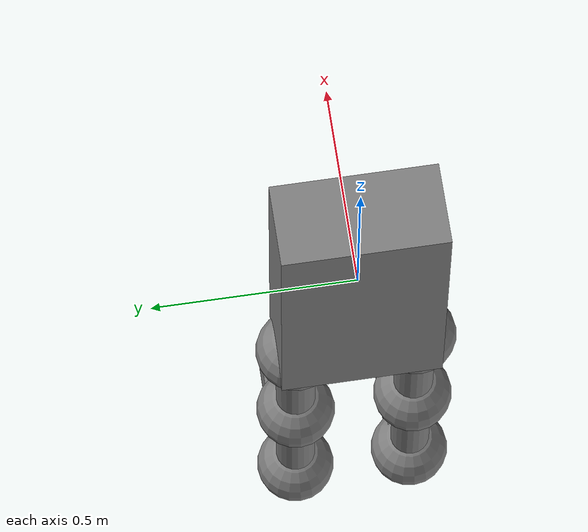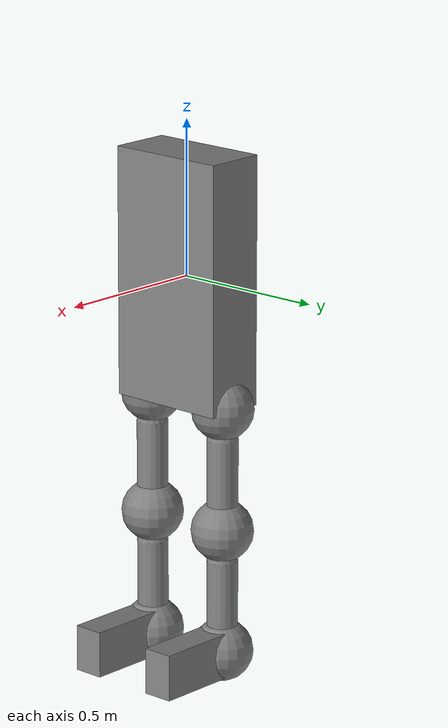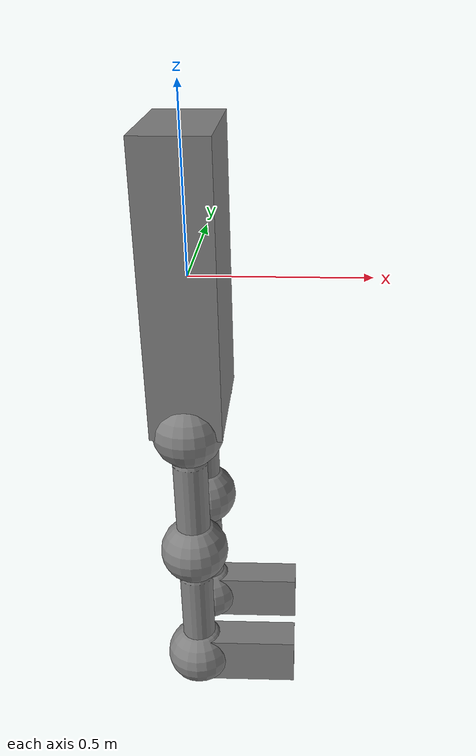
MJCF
<mujoco model="legs">
    <compiler angle="degree" coordinate="global" />
    <default>
        <joint stiffness="5" damping="5"/>
    </default>
    <worldbody>
        <body name="base">
            <joint armature="0" axis="1 0 0" damping="0" limited="false" name="ignorex" pos="0 0 0" stiffness="0" type="slide"/>
            <joint armature="0" axis="0 0 1" damping="0" limited="false" name="ignorez" pos="0 0 0" stiffness="0" type="slide"/>
            <joint armature="0" axis="0 1 0" damping="0" limited="false" name="ignorey" pos="0 0 0" stiffness="0" type="hinge"/>
            <geom name="base" size="0.1 0.2 0.4" type="box" mass="15"/>

            <!-- Beginning of right leg -->
            <body name="right_hip">
                <geom name="right_hip_geom" size="0.1" type="sphere" pos="0 -0.15 -0.4" mass="0.5"/>
                <body name="right_thigh">
                    <joint axis="0 1 0" name="right_hip_to_right_thigh" pos="0 -0.15 -0.4" limited="true" range="-90 90" type="hinge"/>
                    <geom name="right_thigh_geom" fromto="0 -0.15 -0.5 0 -0.15 -0.8" size="0.05" type="capsule" mass="7"/>

                    <body name="right_knee">
                        <geom name="right_knee_geom" size="0.1" type="sphere" pos="0 -0.15 -0.8" mass="0.5"/>

                        <body name="right_shin">
                            <joint axis="0 1 0" name="right_knee_to_right_shin" pos="0 0 -0.8" limited="true" range="0 90" type="hinge"/>
                            <geom name="right_shin_geom" fromto="0 -0.15 -0.9 0 -0.15 -1.2" size="0.05" type="capsule" mass="5"/>

                            <body name="right_ankle">
                                <geom name="right_ankle_geom" size="0.1" type="sphere" pos="0 -0.15 -1.2" mass="0.5"/>

                                <body name="right_foot">
                                    <joint axis="0 1 0" name="right_ankle_to_right_foot" pos="0 0 -1.2" limited="true" range="-15 90" type="hinge"/>
                                    <geom name="right_foot_geom" pos="0.15 -0.15 -1.2" size="0.15 0.05 0.075" type="box" mass="1"/>
                                </body>
                            </body>
                        </body>
                    </body>
                </body>
            </body>
            <!-- Beginning of left leg -->
            <body name="left_hip">
                <geom name="left_hip_geom" size="0.1" type="sphere" pos="0 0.15 -0.4" mass="0.5"/>
                <body name="left_thigh">
                    <joint axis="0 1 0" name="left_hip_to_left_thigh" pos="0 0.15 -0.4" limited="true" range="-90 90" type="hinge"/>
                    <geom name="left_thigh_geom" fromto="0 0.15 -0.5 0 0.15 -0.8" size="0.05" type="capsule" mass="7"/>

                    <body name="left_knee">
                        <geom name="left_knee_geom" size="0.1" type="sphere" pos="0 0.15 -0.8" mass="0.5"/>

                        <body name="left_shin">
                            <joint axis="0 1 0" name="left_thigh_to_left_shin" pos="0 0 -0.8" limited="true" range="0 90" type="hinge"/>
                            <geom name="left_shin_geom" fromto="0 0.15 -0.9 0 0.15 -1.2" size="0.05" type="capsule" mass="5"/>

                            <body name="left_ankle">
                                <geom name="left_ankle_geom" size="0.1" type="sphere" pos="0 0.15 -1.2" mass="0.5"/>

                                <body name="left_foot">
                                    <joint axis="0 1 0" name="left_ankle_to_left_foot" pos="0 0 -1.2" limited="true" range="-15 90" type="hinge"/>
                                    <geom name="left_foot_geom" pos="0.15 0.15 -1.2" size="0.15 0.05 0.075" type="box" mass="1"/>
                                </body>
                            </body>
                        </body>
                    </body>
                </body>
            </body>
        </body>
    </worldbody>
</mujoco>
